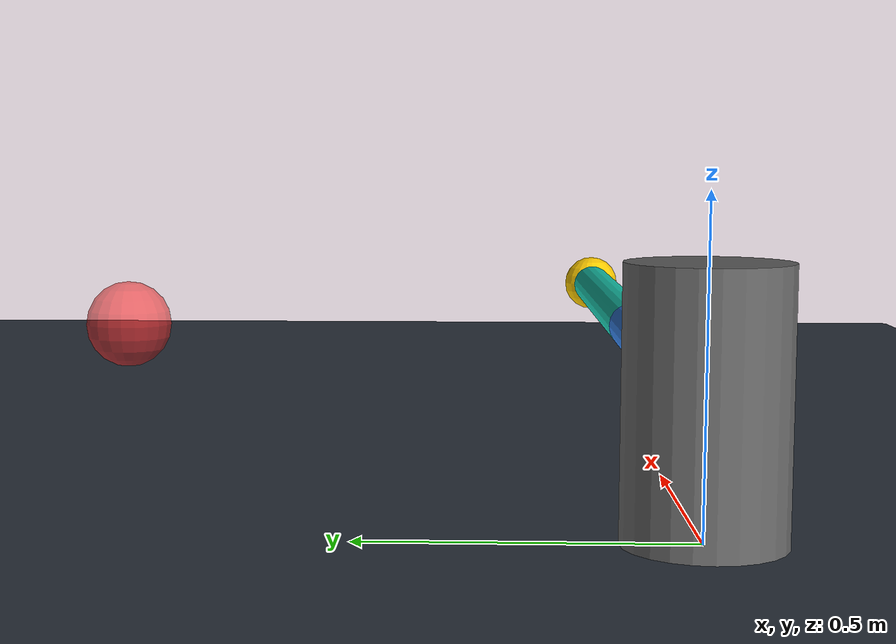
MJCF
<mujoco model="two_link_reach">
  <compiler angle="radian"/>
  <option timestep="0.002" integrator="implicitfast" gravity="0 0 -9.81"/>
  <visual><global azimuth="90" elevation="-75"/></visual>
  <default>
    <joint type="hinge" axis="0 0 1" damping="2" armature="0.05"/>
    <geom type="capsule" size="0.045" density="500" contype="0" conaffinity="0"/>
  </default>
  <worldbody>
    <light pos="0 0 4"/>
    <geom type="plane" size="3 3 0.1" rgba="0.18 0.21 0.25 1"/>
    <body name="base" pos="0 0 0.2">
      <geom type="cylinder" size="0.12 0.2" rgba="0.4 0.4 0.4 1"/>
      <body name="link1">
        <joint name="shoulder"/>
        <geom fromto="0 0 0 1 0 0" rgba="0.2 0.5 0.9 1"/>
        <body name="link2" pos="1 0 0">
          <joint name="elbow"/>
          <geom fromto="0 0 0 1 0 0" rgba="0.1 0.8 0.7 1"/>
          <site name="ee" pos="1 0 0" size="0.065" rgba="1 0.8 0 1"/>
        </body>
      </body>
    </body>
    <body name="target" mocap="true" pos="1 1 0.2">
      <geom type="sphere" size="0.085" rgba="1 0.2 0.2 0.6"/>
    </body>
  </worldbody>
  <actuator>
    <position name="shoulder_position" joint="shoulder" kp="100" kv="20" forcelimited="true" forcerange="-100 100"/>
    <position name="elbow_position" joint="elbow" kp="100" kv="20" forcelimited="true" forcerange="-100 100"/>
  </actuator>
</mujoco>
